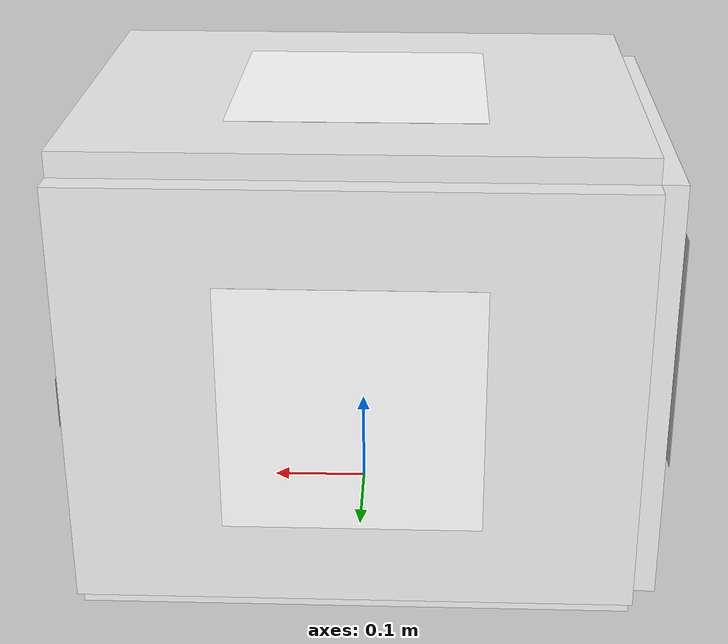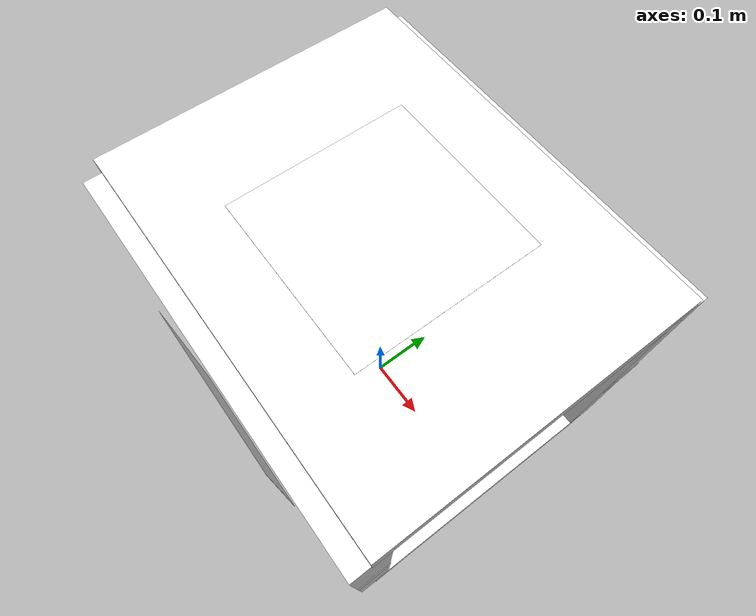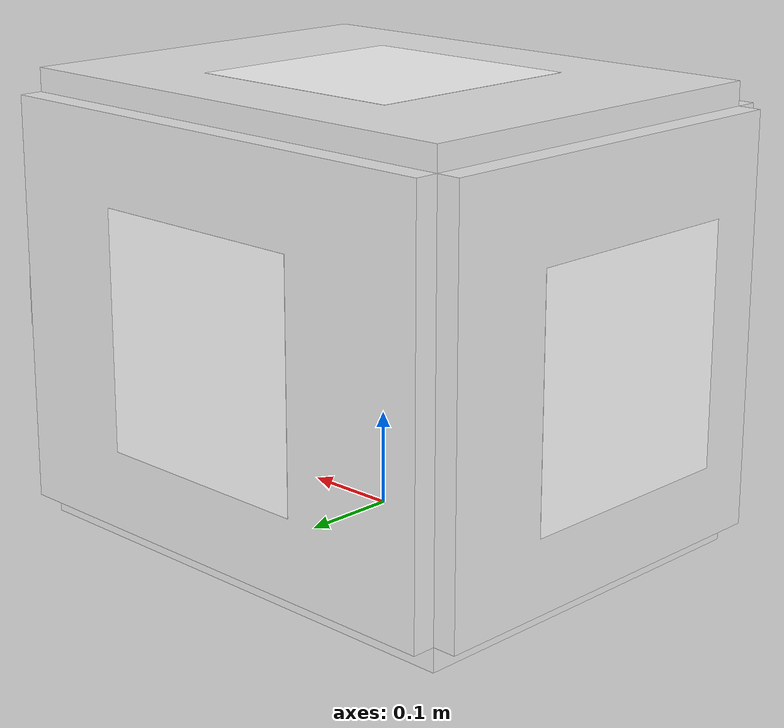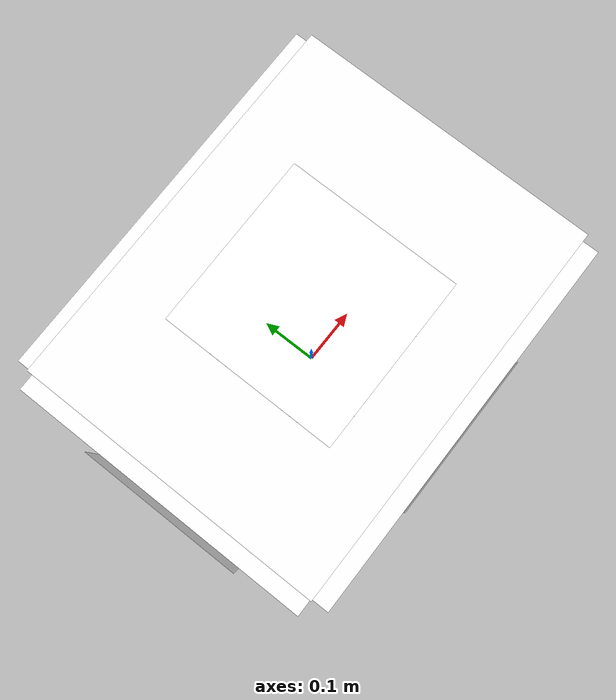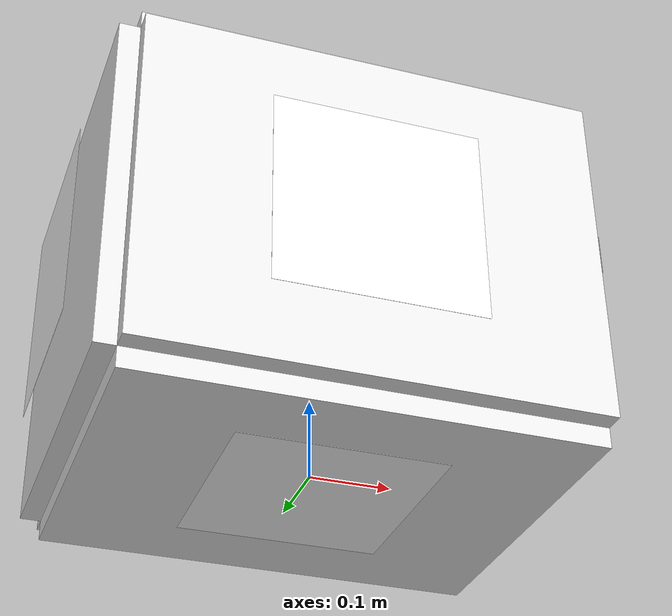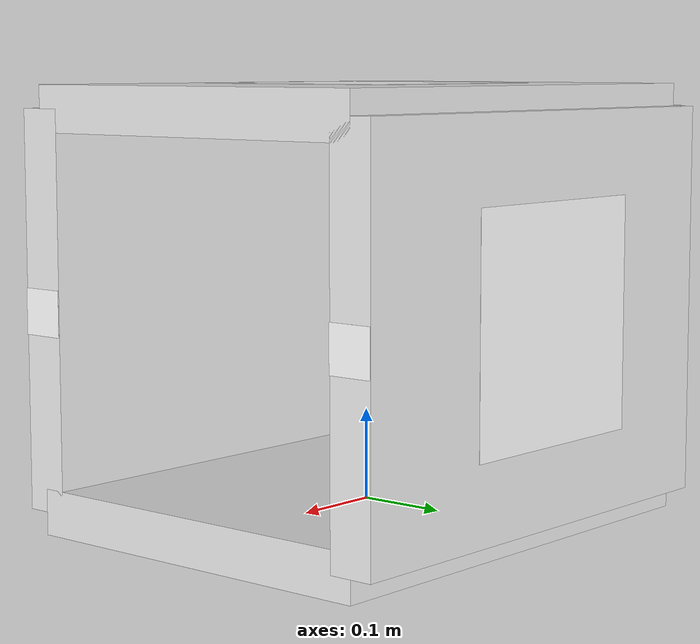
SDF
<sdf version='1.11'>
  <model name='docking_station'>
    <link name='dock_base_footprint'>
      <inertial>
        <pose>-0.055000000000000021 6.9388939039072284e-18 0.215 0 0 0</pose>
        <mass>0.25</mass>
        <inertia>
          <ixx>0.024329166666666669</ixx>
          <ixy>0.0011770000000000001</ixy>
          <ixz>-0.00088710000000000091</ixz>
          <iyy>0.02548166666666667</iyy>
          <iyz>0.00022260000000000029</iyz>
          <izz>0.033201666666666671</izz>
        </inertia>
      </inertial>
      <collision name='dock_base_footprint_fixed_joint_lump__dock_base_link_collision'>
        <pose>0 0 0 0 0 0</pose>
        <geometry>
          <box>
            <size>0.55000000000000004 0.42999999999999999 0.050000000000000003</size>
          </box>
        </geometry>
        <surface>
          <contact>
            <ode/>
          </contact>
          <friction>
            <ode>
              <mu>1</mu>
              <mu2>1</mu2>
            </ode>
          </friction>
        </surface>
      </collision>
      <collision name='dock_base_footprint_fixed_joint_lump__dock_back_link_collision_1'>
        <pose>-0.27500000000000002 0 0.215 0 0 0</pose>
        <geometry>
          <box>
            <size>0.050000000000000003 0.42999999999999999 0.42999999999999999</size>
          </box>
        </geometry>
        <surface>
          <contact>
            <ode/>
          </contact>
          <friction>
            <ode>
              <mu>1</mu>
              <mu2>1</mu2>
            </ode>
          </friction>
        </surface>
      </collision>
      <collision name='dock_base_footprint_fixed_joint_lump__left_wall_link_collision_2'>
        <pose>0 0.215 0.215 1.5707963267948959 0 0</pose>
        <geometry>
          <box>
            <size>0.55000000000000004 0.42999999999999999 0.050000000000000003</size>
          </box>
        </geometry>
        <surface>
          <contact>
            <ode/>
          </contact>
          <friction>
            <ode>
              <mu>1</mu>
              <mu2>1</mu2>
            </ode>
          </friction>
        </surface>
      </collision>
      <collision name='dock_base_footprint_fixed_joint_lump__right_wall_link_collision_3'>
        <pose>0 -0.215 0.215 1.5707963267948959 0 0</pose>
        <geometry>
          <box>
            <size>0.55000000000000004 0.42999999999999999 0.050000000000000003</size>
          </box>
        </geometry>
        <surface>
          <contact>
            <ode/>
          </contact>
          <friction>
            <ode>
              <mu>1</mu>
              <mu2>1</mu2>
            </ode>
          </friction>
        </surface>
      </collision>
      <collision name='dock_base_footprint_fixed_joint_lump__roof_link_collision_4'>
        <pose>0 0 0.42999999999999999 0 0 0</pose>
        <geometry>
          <box>
            <size>0.55000000000000004 0.42999999999999999 0.050000000000000003</size>
          </box>
        </geometry>
        <surface>
          <contact>
            <ode/>
          </contact>
          <friction>
            <ode>
              <mu>1</mu>
              <mu2>1</mu2>
            </ode>
          </friction>
        </surface>
      </collision>
      <visual name='dock_base_footprint_fixed_joint_lump__dock_base_link_visual'>
        <pose>0 0 0 0 0 0</pose>
        <geometry>
          <box>
            <size>0.55000000000000004 0.42999999999999999 0.050000000000000003</size>
          </box>
        </geometry>
        <material>
          <script>
            <name>Gazebo/White</name>
            <uri>file://media/materials/scripts/gazebo.material</uri>
          </script>
        </material>
      </visual>
      <visual name='dock_base_footprint_fixed_joint_lump__dock_back_link_visual_2'>
        <pose>-0.27500000000000002 0 0.215 0 0 0</pose>
        <geometry>
          <box>
            <size>0.050000000000000003 0.42999999999999999 0.42999999999999999</size>
          </box>
        </geometry>
        <material>
          <script>
            <name>Gazebo/White</name>
            <uri>file://media/materials/scripts/gazebo.material</uri>
          </script>
        </material>
      </visual>
      <visual name='dock_base_footprint_fixed_joint_lump__left_wall_link_visual_3'>
        <pose>0 0.215 0.215 1.5707963267948959 0 0</pose>
        <geometry>
          <box>
            <size>0.55000000000000004 0.42999999999999999 0.050000000000000003</size>
          </box>
        </geometry>
        <material>
          <script>
            <name>Gazebo/White</name>
            <uri>file://media/materials/scripts/gazebo.material</uri>
          </script>
        </material>
      </visual>
      <visual name='dock_base_footprint_fixed_joint_lump__right_wall_link_visual_4'>
        <pose>0 -0.215 0.215 1.5707963267948959 0 0</pose>
        <geometry>
          <box>
            <size>0.55000000000000004 0.42999999999999999 0.050000000000000003</size>
          </box>
        </geometry>
        <material>
          <script>
            <name>Gazebo/White</name>
            <uri>file://media/materials/scripts/gazebo.material</uri>
          </script>
        </material>
      </visual>
      <visual name='dock_base_footprint_fixed_joint_lump__roof_link_visual_5'>
        <pose>0 0 0.42999999999999999 0 0 0</pose>
        <geometry>
          <box>
            <size>0.55000000000000004 0.42999999999999999 0.050000000000000003</size>
          </box>
        </geometry>
        <material>
          <script>
            <name>Gazebo/White</name>
            <uri>file://media/materials/scripts/gazebo.material</uri>
          </script>
        </material>
      </visual>
      <visual name="aruco_marker0">
        <pose>0.276 -0.215 0.215 0 1.5708 0</pose> <!-- box entrance right-->
        <geometry>
          <plane>
            <size>0.05 0.05</size>
          </plane>
        </geometry>
        <material>
          <diffuse>1 1 1 1</diffuse>
          <specular>0.4 0.4 0.4 1</specular>
          <pbr>
            <metal>
              <albedo_map>5x5_1000-0.jpg</albedo_map>
            </metal>
          </pbr>
        </material>
      </visual>
      <visual name="aruco_marker1">
        <pose>0.276 0.215 0.215 0 1.5708 0</pose> <!-- box entrance left -->
        <geometry>
          <plane>
            <size>0.05 0.05</size>
          </plane>
        </geometry>
        <material>
          <diffuse>1 1 1 1</diffuse>
          <specular>0.4 0.4 0.4 1</specular>
          <pbr>
            <metal>
              <albedo_map>5x5_1000-1.jpg</albedo_map>
            </metal>
          </pbr>
        </material>
      </visual>
      <visual name="aruco_marker2"> <!-- inner back -->
        <pose>-0.226 0.0 0.215 0 1.5708 0</pose>
        <geometry>
          <plane>
            <size>0.25 0.25</size>
          </plane>
        </geometry>
        <material>
          <diffuse>1 1 1 1</diffuse>
          <specular>0.4 0.4 0.4 1</specular>
          <pbr>
            <metal>
              <albedo_map>5x5_1000-2.jpg</albedo_map>
            </metal>
          </pbr>
        </material>
      </visual>
      <visual name="aruco_marker3"> <!-- left side -->
        <pose>0.0 0.251 0.215 0 1.5708 1.5708</pose>
        <geometry>
          <plane>
            <size>0.25 0.25</size>
          </plane>
        </geometry>
        <material>
          <diffuse>1 1 1 1</diffuse>
          <specular>0.4 0.4 0.4 1</specular>
          <pbr>
            <metal>
              <albedo_map>5x5_1000-3.jpg</albedo_map>
            </metal>
          </pbr>
        </material>
      </visual>
      <visual name="aruco_marker4"> <!-- right side -->
        <pose>0.0 -0.251 0.215 0 1.5708 -1.5708</pose>
        <geometry>
          <plane>
            <size>0.25 0.25</size>
          </plane>
        </geometry>
        <material>
          <diffuse>1 1 1 1</diffuse>
          <specular>0.4 0.4 0.4 1</specular>
          <pbr>
            <metal>
              <albedo_map>5x5_1000-4.jpg</albedo_map>
            </metal>
          </pbr>
        </material>
      </visual>
      <visual name="aruco_marker5"> <!-- bottom -->
        <pose>0.0 0.0 -0.026 0 3.14 0</pose>
        <geometry>
          <plane>
            <size>0.25 0.25</size>
          </plane>
        </geometry>
        <material>
          <diffuse>1 1 1 1</diffuse>
          <specular>0.4 0.4 0.4 1</specular>
          <pbr>
            <metal>
              <albedo_map>5x5_1000-5.jpg</albedo_map>
            </metal>
          </pbr>
        </material>
      </visual>
      <visual name="aruco_marker6"> <!-- roof -->
        <pose>0.0 0.0 0.456 0 0 0</pose>
        <geometry>
          <plane>
            <size>0.25 0.25</size>
          </plane>
        </geometry>
        <material>
          <diffuse>1 1 1 1</diffuse>
          <specular>0.4 0.4 0.4 1</specular>
          <pbr>
            <metal>
              <albedo_map>5x5_1000-6.jpg</albedo_map>
            </metal>
          </pbr>
        </material>
      </visual>
      <visual name="aruco_marker7"> <!-- outer back -->
        <pose>-0.32 0.0 0.215 0 -1.5708 0</pose>
        <geometry>
          <plane>
            <size>0.25 0.25</size>
          </plane>
        </geometry>
        <material>
          <diffuse>1 1 1 1</diffuse>
          <specular>0.4 0.4 0.4 1</specular>
          <pbr>
            <metal>
              <albedo_map>5x5_1000-7.jpg</albedo_map>
            </metal>
          </pbr>
        </material>
      </visual>
    </link>
    <static>true</static>
    <frame name='dock_back_joint' attached_to='dock_base_link'>
      <pose>-0.27500000000000002 0 0.215 0 0 0</pose>
    </frame>
    <frame name='dock_back_link' attached_to='dock_back_joint'>
      <pose>0 0 0 0 0 0</pose>
    </frame>
    <frame name='left_wall_joint' attached_to='dock_base_link'>
      <pose>0 0.215 0.215 1.5707963267948959 0 0</pose>
    </frame>
    <frame name='left_wall_link' attached_to='left_wall_joint'>
      <pose>0 0 0 0 0 0</pose>
    </frame>
    <frame name='right_wall_joint' attached_to='dock_base_link'>
      <pose>0 -0.215 0.215 1.5707963267948959 0 0</pose>
    </frame>
    <frame name='right_wall_link' attached_to='right_wall_joint'>
      <pose>0 0 0 0 0 0</pose>
    </frame>
    <frame name='roof_joint' attached_to='dock_base_link'>
      <pose>0 0 0.42999999999999999 0 0 0</pose>
    </frame>
    <frame name='roof_link' attached_to='roof_joint'>
      <pose>0 0 0 0 0 0</pose>
    </frame>
    <frame name='dock_base_joint' attached_to='dock_base_footprint'>
      <pose>0 0 0 0 0 0</pose>
    </frame>
    <frame name='dock_base_link' attached_to='dock_base_joint'>
      <pose>0 0 0 0 0 0</pose>
    </frame>
  </model>
</sdf>
